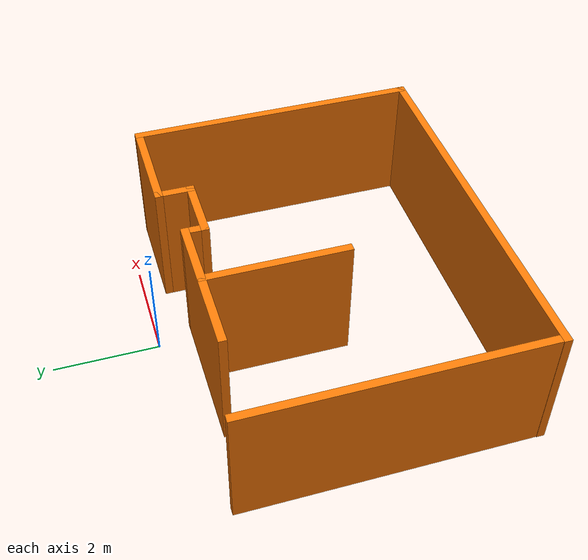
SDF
<?xml version='1.0'?>
<sdf version='1.6'>
  <model name='building'>
    <pose frame=''>-0.285 -3.21 0 0 -0 0</pose>
    <link name='Wall_0'>
      <collision name='Wall_0_Collision'>
        <geometry>
          <box>
            <size>5.61015 0.15 2.5</size>
          </box>
        </geometry>
        <pose frame=''>0 0 1.25 0 -0 0</pose>
      </collision>
      <visual name='Wall_0_Visual'>
        <pose frame=''>0 0 1.25 0 -0 0</pose>
        <geometry>
          <box>
            <size>5.61015 0.15 2.5</size>
          </box>
        </geometry>
        <material>
          <script>
            <uri>file://media/materials/scripts/gazebo.material</uri>
            <name>Gazebo/Grey</name>
          </script>
          <ambient>0.996078 0.47451 0.0196078 1</ambient>
        </material>
        <meta>
          <layer>0</layer>
        </meta>
      </visual>
      <pose frame=''>-3.55 0 0 0 0 -1.56896</pose>
    </link>
    <link name='Wall_1'>
      <collision name='Wall_1_Collision'>
        <geometry>
          <box>
            <size>7.25 0.15 2.5</size>
          </box>
        </geometry>
        <pose frame=''>0 0 1.25 0 -0 0</pose>
      </collision>
      <visual name='Wall_1_Visual'>
        <pose frame=''>0 0 1.25 0 -0 0</pose>
        <geometry>
          <box>
            <size>7.25 0.15 2.5</size>
          </box>
        </geometry>
        <material>
          <script>
            <uri>file://media/materials/scripts/gazebo.material</uri>
            <name>Gazebo/Grey</name>
          </script>
          <ambient>0.996078 0.47451 0.0196078 1</ambient>
        </material>
        <meta>
          <layer>0</layer>
        </meta>
      </visual>
      <pose frame=''>-0.005 -2.73 0 0 -0 0</pose>
    </link>
    <link name='Wall_2'>
      <collision name='Wall_2_Collision'>
        <geometry>
          <box>
            <size>5.61015 0.15 2.5</size>
          </box>
        </geometry>
        <pose frame=''>0 0 1.25 0 -0 0</pose>
      </collision>
      <visual name='Wall_2_Visual'>
        <pose frame=''>0 0 1.25 0 -0 0</pose>
        <geometry>
          <box>
            <size>5.61015 0.15 2.5</size>
          </box>
        </geometry>
        <material>
          <script>
            <uri>file://media/materials/scripts/gazebo.material</uri>
            <name>Gazebo/Grey</name>
          </script>
          <ambient>0.996078 0.47451 0.0196078 1</ambient>
        </material>
        <meta>
          <layer>0</layer>
        </meta>
      </visual>
      <pose frame=''>3.55 0 0 0 -0 1.57263</pose>
    </link>
    <link name='Wall_3'>
      <collision name='Wall_3_Collision'>
        <geometry>
          <box>
            <size>2 0.15 2.5</size>
          </box>
        </geometry>
        <pose frame=''>0 0 1.25 0 -0 0</pose>
      </collision>
      <visual name='Wall_3_Visual'>
        <pose frame=''>0 0 1.25 0 -0 0</pose>
        <geometry>
          <box>
            <size>2 0.15 2.5</size>
          </box>
        </geometry>
        <material>
          <script>
            <uri>file://media/materials/scripts/gazebo.material</uri>
            <name>Gazebo/Grey</name>
          </script>
          <ambient>0.996078 0.47451 0.0196078 1</ambient>
        </material>
        <meta>
          <layer>0</layer>
        </meta>
      </visual>
      <pose frame=''>2.62 2.73 0 0 -0 3.14159</pose>
    </link>
    <link name='Wall_4'>
      <collision name='Wall_4_Collision'>
        <geometry>
          <box>
            <size>0.75 0.15 2.5</size>
          </box>
        </geometry>
        <pose frame=''>0 0 1.25 0 -0 0</pose>
      </collision>
      <visual name='Wall_4_Visual'>
        <pose frame=''>0 0 1.25 0 -0 0</pose>
        <geometry>
          <box>
            <size>0.75 0.15 2.5</size>
          </box>
        </geometry>
        <material>
          <script>
            <uri>file://media/materials/scripts/gazebo.material</uri>
            <name>Gazebo/Grey</name>
          </script>
          <ambient>0.996078 0.47451 0.0196078 1</ambient>
        </material>
        <meta>
          <layer>0</layer>
        </meta>
      </visual>
      <pose frame=''>1.695 2.43 0 0 0 -1.5708</pose>
    </link>
    <link name='Wall_5'>
      <collision name='Wall_5_Collision'>
        <geometry>
          <box>
            <size>1.25 0.15 2.5</size>
          </box>
        </geometry>
        <pose frame=''>0 0 1.25 0 -0 0</pose>
      </collision>
      <visual name='Wall_5_Visual'>
        <pose frame=''>0 0 1.25 0 -0 0</pose>
        <geometry>
          <box>
            <size>1.25 0.15 2.5</size>
          </box>
        </geometry>
        <material>
          <script>
            <uri>file://media/materials/scripts/gazebo.material</uri>
            <name>Gazebo/Grey</name>
          </script>
          <ambient>0.996078 0.47451 0.0196078 1</ambient>
        </material>
        <meta>
          <layer>0</layer>
        </meta>
      </visual>
      <pose frame=''>1.145 2.13 0 0 -0 3.14159</pose>
    </link>
    <link name='Wall_6'>
      <collision name='Wall_6_Collision'>
        <geometry>
          <box>
            <size>0.5 0.15 2.5</size>
          </box>
        </geometry>
        <pose frame=''>0 0 1.25 0 -0 0</pose>
      </collision>
      <visual name='Wall_6_Visual'>
        <pose frame=''>0 0 1.25 0 -0 0</pose>
        <geometry>
          <box>
            <size>0.5 0.15 2.5</size>
          </box>
        </geometry>
        <material>
          <script>
            <uri>file://media/materials/scripts/gazebo.material</uri>
            <name>Gazebo/Grey</name>
          </script>
          <ambient>0.996078 0.47451 0.0196078 1</ambient>
        </material>
        <meta>
          <layer>0</layer>
        </meta>
      </visual>
      <pose frame=''>0.595 2.305 0 0 -0 1.5708</pose>
    </link>
    <link name='Wall_7'>
      <collision name='Wall_7_Collision'>
        <geometry>
          <box>
            <size>2.75 0.15 2.5</size>
          </box>
        </geometry>
        <pose frame=''>0 0 1.25 0 -0 0</pose>
      </collision>
      <visual name='Wall_7_Visual'>
        <pose frame=''>0 0 1.25 0 -0 0</pose>
        <geometry>
          <box>
            <size>2.75 0.15 2.5</size>
          </box>
        </geometry>
        <material>
          <script>
            <uri>file://media/materials/scripts/gazebo.material</uri>
            <name>Gazebo/Grey</name>
          </script>
          <ambient>0.996078 0.47451 0.0196078 1</ambient>
        </material>
        <meta>
          <layer>0</layer>
        </meta>
      </visual>
      <pose frame=''>-0.705 2.48 0 0 -0 3.14159</pose>
    </link>
    <link name='Wall_9'>
      <collision name='Wall_9_Collision'>
        <geometry>
          <box>
            <size>2.75 0.15 2.5</size>
          </box>
        </geometry>
        <pose frame=''>0 0 1.25 0 -0 0</pose>
      </collision>
      <visual name='Wall_9_Visual'>
        <pose frame=''>0 0 1.25 0 -0 0</pose>
        <geometry>
          <box>
            <size>2.75 0.15 2.5</size>
          </box>
        </geometry>
        <material>
          <script>
            <uri>file://media/materials/scripts/gazebo.material</uri>
            <name>Gazebo/Grey</name>
          </script>
          <ambient>0.996078 0.47451 0.0196078 1</ambient>
        </material>
        <meta>
          <layer>0</layer>
        </meta>
      </visual>
      <pose frame=''>-0.615 1.17 0 0 -0 1.5708</pose>
    </link>
    <static>1</static>
  </model>
</sdf>
